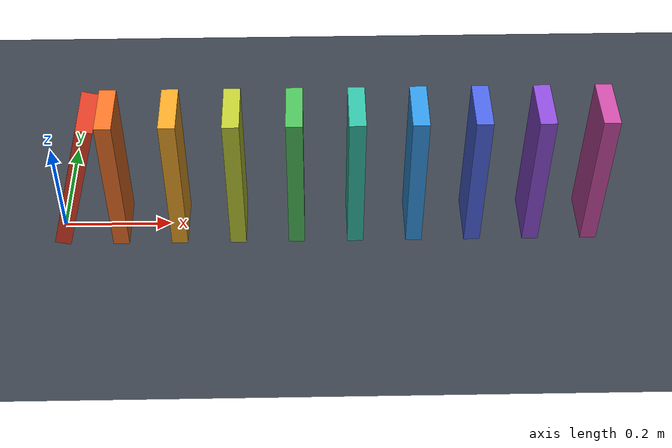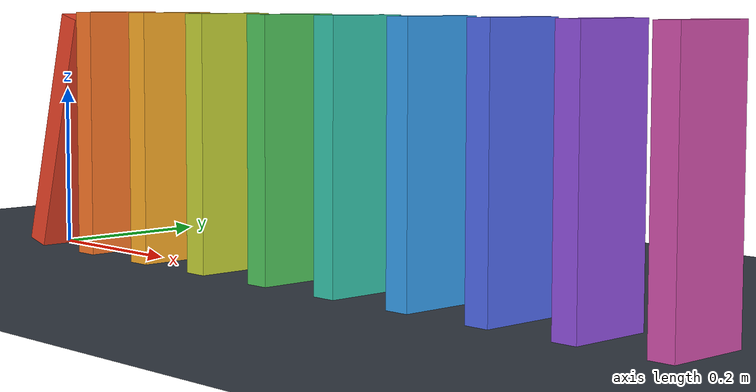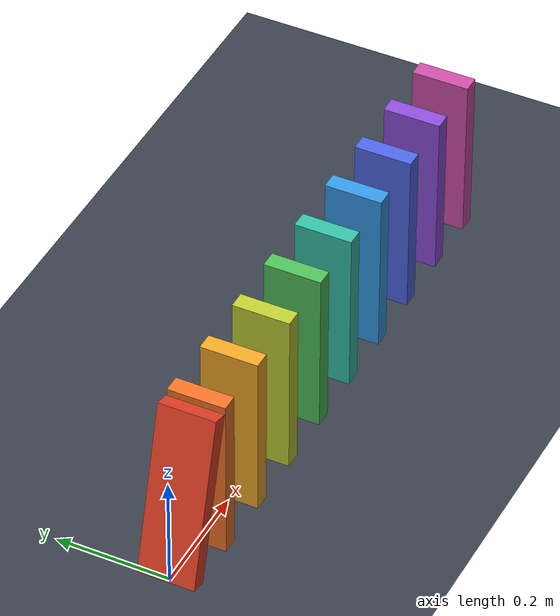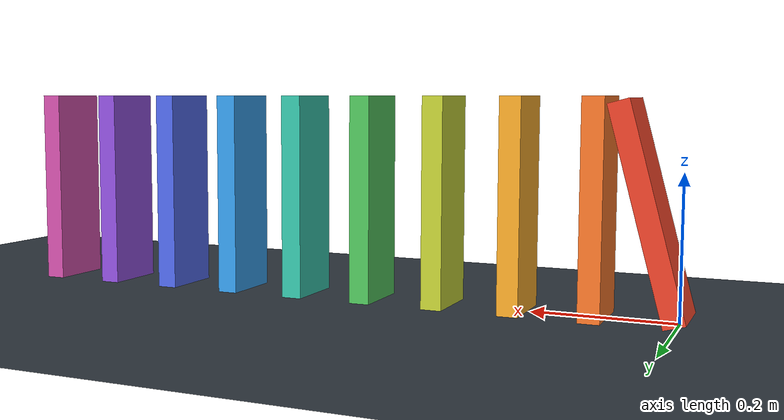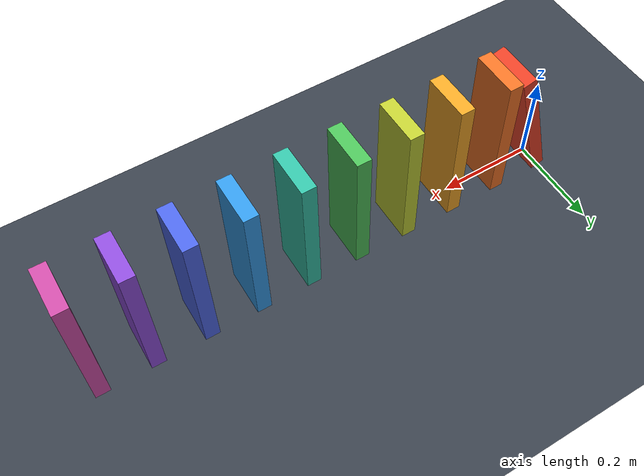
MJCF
<mujoco model="ten_domino_chain">
  <compiler angle="degree"/>
  <option timestep="0.002" gravity="0 0 -9.81" integrator="implicitfast" solver="Newton" iterations="100" tolerance="1e-10"/>
  <size nconmax="200" njmax="1000"/>

  <visual>
    <global azimuth="110" elevation="-25"/>
    <headlight ambient="0.35 0.35 0.35" diffuse="0.65 0.65 0.65" specular="0.15 0.15 0.15"/>
  </visual>

  <worldbody>
    <light name="overhead" pos="0.5 -0.5 2" dir="0 0 -1" diffuse="0.8 0.8 0.8"/>
    <camera name="overview" pos="0.50 -1.65 0.95" xyaxes="1 0 0 0 0.447214 0.894427"/>
    <geom name="floor" type="plane" pos="0 0 0" size="2 1.5 0.1" rgba="0.22 0.25 0.29 1" condim="3" friction="0.8 0.005 0.0001" solref="0.008 1" solimp="0.95 0.99 0.001"/>

    <!-- Each domino measures 0.03 by 0.10 by 0.30 m.
         The first starts tilted 15 degrees toward the row, beyond its
         tipping point, with its lower forward edge resting on the floor. -->
    <body name="domino1" pos="0.0393339694 0 0.1487711596" quat="0.9914448614 0 0.1305261922 0">
      <freejoint name="domino1_free"/>
      <geom name="domino1_geom" type="box" size="0.015 0.05 0.15" density="600" rgba="0.9 0.25 0.15 1" condim="3" friction="0.6 0.005 0.0001" solref="0.008 1" solimp="0.95 0.99 0.001"/>
    </body>

    <body name="domino2" pos="0.11 0 0.15">
      <freejoint name="domino2_free"/>
      <geom name="domino2_geom" type="box" size="0.015 0.05 0.15" density="600" rgba="0.95 0.45 0.15 1" condim="3" friction="0.6 0.005 0.0001" solref="0.008 1" solimp="0.95 0.99 0.001"/>
    </body>

    <body name="domino3" pos="0.22 0 0.15">
      <freejoint name="domino3_free"/>
      <geom name="domino3_geom" type="box" size="0.015 0.05 0.15" density="600" rgba="0.95 0.65 0.15 1" condim="3" friction="0.6 0.005 0.0001" solref="0.008 1" solimp="0.95 0.99 0.001"/>
    </body>

    <body name="domino4" pos="0.33 0 0.15">
      <freejoint name="domino4_free"/>
      <geom name="domino4_geom" type="box" size="0.015 0.05 0.15" density="600" rgba="0.75 0.8 0.2 1" condim="3" friction="0.6 0.005 0.0001" solref="0.008 1" solimp="0.95 0.99 0.001"/>
    </body>

    <body name="domino5" pos="0.44 0 0.15">
      <freejoint name="domino5_free"/>
      <geom name="domino5_geom" type="box" size="0.015 0.05 0.15" density="600" rgba="0.3 0.75 0.35 1" condim="3" friction="0.6 0.005 0.0001" solref="0.008 1" solimp="0.95 0.99 0.001"/>
    </body>

    <body name="domino6" pos="0.55 0 0.15">
      <freejoint name="domino6_free"/>
      <geom name="domino6_geom" type="box" size="0.015 0.05 0.15" density="600" rgba="0.2 0.75 0.65 1" condim="3" friction="0.6 0.005 0.0001" solref="0.008 1" solimp="0.95 0.99 0.001"/>
    </body>

    <body name="domino7" pos="0.66 0 0.15">
      <freejoint name="domino7_free"/>
      <geom name="domino7_geom" type="box" size="0.015 0.05 0.15" density="600" rgba="0.2 0.6 0.9 1" condim="3" friction="0.6 0.005 0.0001" solref="0.008 1" solimp="0.95 0.99 0.001"/>
    </body>

    <body name="domino8" pos="0.77 0 0.15">
      <freejoint name="domino8_free"/>
      <geom name="domino8_geom" type="box" size="0.015 0.05 0.15" density="600" rgba="0.3 0.4 0.9 1" condim="3" friction="0.6 0.005 0.0001" solref="0.008 1" solimp="0.95 0.99 0.001"/>
    </body>

    <body name="domino9" pos="0.88 0 0.15">
      <freejoint name="domino9_free"/>
      <geom name="domino9_geom" type="box" size="0.015 0.05 0.15" density="600" rgba="0.55 0.3 0.85 1" condim="3" friction="0.6 0.005 0.0001" solref="0.008 1" solimp="0.95 0.99 0.001"/>
    </body>

    <body name="domino10" pos="0.99 0 0.15">
      <freejoint name="domino10_free"/>
      <geom name="domino10_geom" type="box" size="0.015 0.05 0.15" density="600" rgba="0.8 0.3 0.65 1" condim="3" friction="0.6 0.005 0.0001" solref="0.008 1" solimp="0.95 0.99 0.001"/>
    </body>
  </worldbody>
</mujoco>
